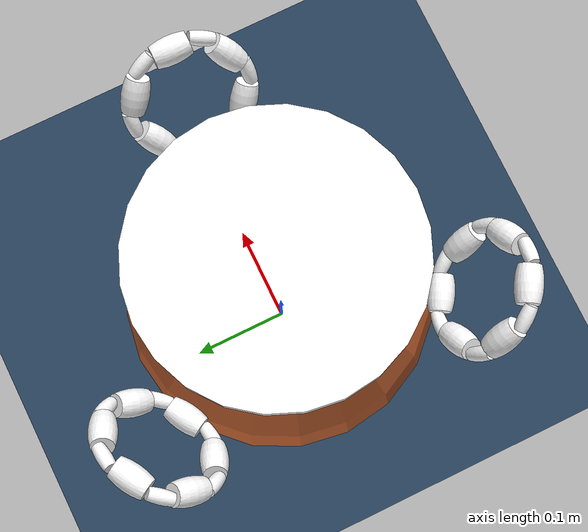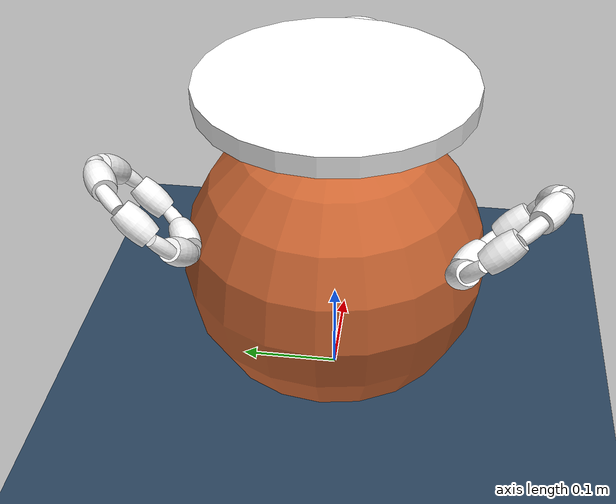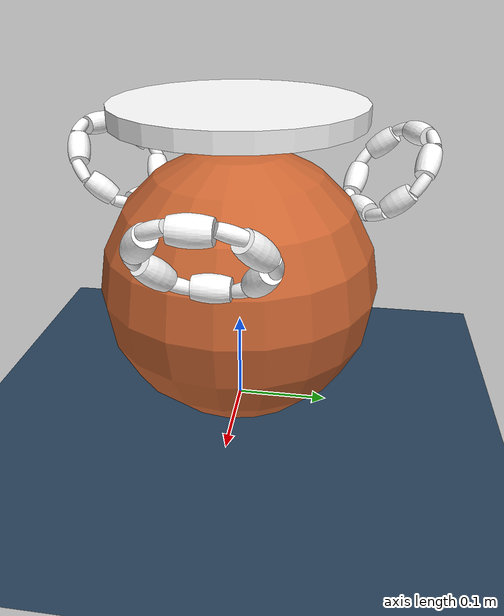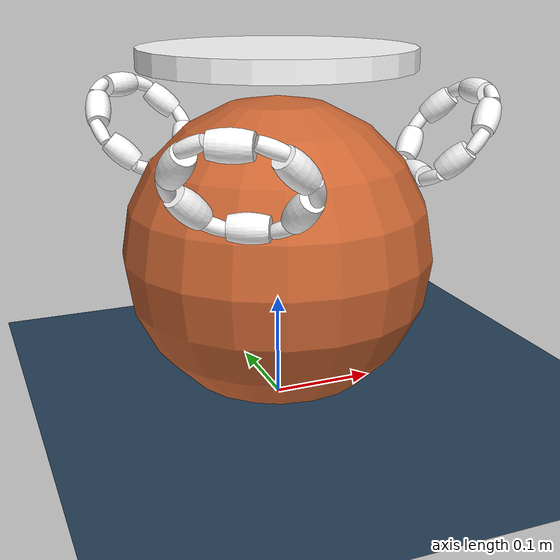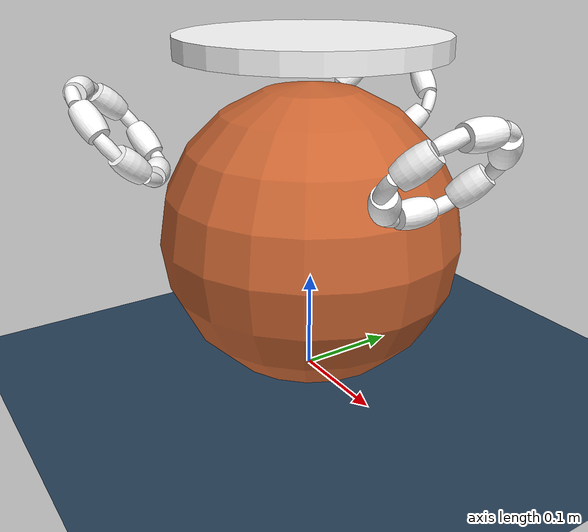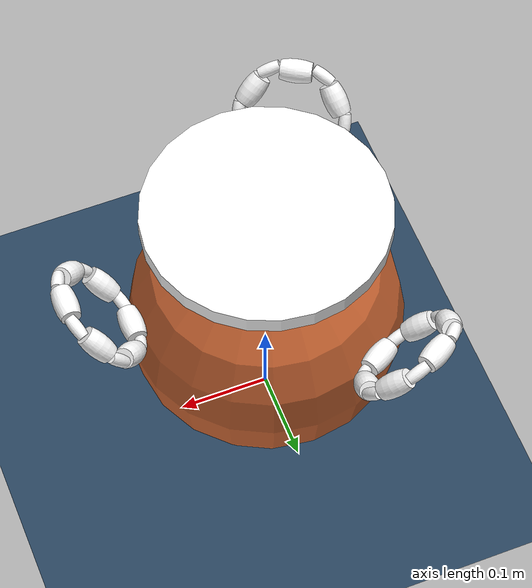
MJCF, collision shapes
<mujoco model="mjmodel scene">

  <!--引用机器人模型-->
  <include file="omni_ballbot.xml"/>
  <!--设置场景统计信息显示范围 中心位于(0,0,0.1)，半径 0.8 米-->
  <statistic center="0 0 0.1" extent="0.8"/>

  <!--视觉全局设置-->
  <visual>
    <headlight diffuse="0.6 0.6 0.6" ambient="0.3 0.3 0.3" specular="0 0 0"/>
    <rgba haze="0.15 0.25 0.35 1"/>
    <global azimuth="-130" elevation="-20"/>
  </visual>
  <!--天空盒纹理 地面纹理-->
  <asset>
    <texture type="skybox" builtin="gradient" rgb1="0.3 0.5 0.7" rgb2="0 0 0" width="512" height="3072"/>
    <texture type="2d" name="groundplane" builtin="checker" mark="edge" rgb1="0.2 0.3 0.4" rgb2="0.1 0.2 0.3"
      markrgb="0.8 0.8 0.8" width="300" height="300"/>
    <material name="groundplane" texture="groundplane" texuniform="true" texrepeat="5 5" reflectance="0.2"/>
    <mesh name="roll_arrow_ring" file="roll_arrow_ring.stl"/>
  </asset>
  <!--地面平面和球-->
  <worldbody>
    <light pos="0 0 1.5" dir="0 0 -1" directional="true"/>
    <!--地面摩擦力在这-->
    <geom name="floor" size="0 0 0.05" type="plane" material="groundplane" friction="1.0 0.003 0.0005"/>
    <body name="balance_ball" pos="0 0 0.15">
      <freejoint name="ball_joint"/>
      <geom name="ball_geom" type="sphere" size="0.15" mass="0.6" rgba="0.8 0.4 0.2 1"
            condim="6" friction="1.0 0.003 0.0005"
            solref="0.02 1" solimp="0.9 0.95 0.001 0.5 2" margin="0.002"/>
      <!-- 球滚动方向可视化：两个正交圆环，随球旋转 -->
      <geom type="mesh" mesh="roll_arrow_ring" rgba="0 1 0 0.85" contype="0" conaffinity="0"/>
      <geom type="mesh" mesh="roll_arrow_ring" rgba="1 0 0 0.85" contype="0" conaffinity="0" quat="0.707 0 0 0.707"/>
    </body>
  </worldbody>
</mujoco>

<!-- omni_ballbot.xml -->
<mujoco model="omni_ballbot">
  <compiler angle="radian" meshdir="../meshes/"/>
  <!--cone决定了打滑时摩擦力的极限边界为椭圆形  impratio为接触阻抗比-->
  <option cone="elliptic" impratio="10"/>
<!--资产meshes-->
  <asset>
    <mesh name="base_link" file="base_link.STL"/>
    <mesh name="wheel_base" file="wheel_base.STL"/>
    <mesh name="wheel_link_A" file="wheel_link_A.STL"/>
    <mesh name="wheel_link_B" file="wheel_link_B.STL"/>
  </asset>
<!--执行器actuator-->
  <actuator>
    <motor name="wheel1" joint="wheel1_joint" ctrlrange="-2.5 2.5" gear="1"/>
    <motor name="wheel2" joint="wheel2_joint" ctrlrange="-2.5 2.5" gear="1"/>
    <motor name="wheel3" joint="wheel3_joint" ctrlrange="-2.5 2.5" gear="1"/>
  </actuator>
<!--辊子组别-->
  <!-- 物体A 和 物体B 发生碰撞的条件是：(注：& 是二进制按位与运算)
      A_contype & B_conaffinity > 0 就碰撞 或者 B_contype & A_conaffinity > 0
  -->
  <!-- 默认地面是 contype="1", conaffinity="1" -->
  <default>
    <default class="omni_roller">
      <!--type="mesh": 告诉引擎别用简单的球或圆柱，去读取你的 STL 文件算凸包，还原最真实的鼓形外轮廓-->
      <!--接触维度:3维算垂直弹力 + 沿面滑动的摩擦力；-->
      <!-- 5 (滑动摩擦): 拉到最大，确保辊子与球之间完全不滑，轮子转动直接驱动球/机身。
           5 (扭转摩擦): 拉满，防止辊子在球面上原地自转打滑以及球在地面扭转。
           0.001 (滚动摩擦): 轻微滚动阻力。 -->
      <!-- margin="0.001" (碰撞裕度): * 网格模型表面会有微小的“棱角”。这个参数会在你的 3D 模型外面“包”一层 1 毫米厚的隐形软垫。
        它能让引擎提前介入计算，把网格相撞时的尖锐脉冲力“柔化”，控制器读取到的力矩曲线会非常平滑。 -->
      <geom type="mesh" contype="2" conaffinity="1" condim="3" friction="0.3 0.001 0.0005" margin="0.002" solref="0.02 1" solimp="0.9 0.95 0.001 0.5 2"/>

      <!-- type="hinge": 所有的辊子只能绕自己的那根轴转。ß
           damping="0.001" (粘性阻尼): * 含义： 阻力与转速成正比（转得越快阻力越大）。模拟轴承里润滑油的粘滞力
           frictionloss="0.001" (干摩擦/静摩擦损失):启动阻力。你必须施加大于这个值的扭矩，辊子才会开始转。模拟金属部件之间的静摩擦。 -->
      <joint type="hinge" damping="0.001" frictionloss="0.001" armature="0.0001"/>
    </default>

    <default class="visual_geom">
      <geom type="mesh" contype="0" conaffinity="0" group="1" density="0"/>
    </default>
  </default>

  <!-- ===== 传感器 ===== -->
  <sensor>
    <!-- 姿态四元数 (IMU) -->
    <framequat name="base_orientation" objtype="site" objname="imu_site"/>
    <!-- 角速度 (陀螺仪) -->
    <frameangvel name="base_angvel" objtype="site" objname="imu_site"/>
    <!-- 线加速度 (加速度计) -->
    <accelerometer name="base_acc" site="imu_site"/>
    <!-- 线速度 -->
    <framelinvel name="base_linvel" objtype="site" objname="imu_site"/>
  </sensor>
  <worldbody>
    <!--让机器人活动-->
    <body name="base_link" pos="0 0 0.335">
    <freejoint name="base_joint"/>
    <inertial pos="0 0 0" mass="3.0" diaginertia="0.05 0.05 0.08"/>
    <geom type="mesh" contype="0" conaffinity="0" group="1" density="0" rgba="1 1 1 1" mesh="base_link"/>
    <geom type="cylinder" size="0.13 0.01" rgba="1 1 1 0" solref="0.04 1" solimp="0.9 0.95 0.001 0.5 2"/>
    <!-- IMU 传感器安装点 (base_link 质心) -->
    <site name="imu_site" pos="0 0 0"/>
    <!--轮子1-->
    <body name="wheel1_base" pos="0.18364 0 -0.081395" quat="0.939693 0 0.342019 0">
      <inertial pos="0 0 0" mass="1.0" diaginertia="1.0185e-05 5.1179e-06 5.1179e-06"/>
      <joint name="wheel1_joint" pos="0 0 0" axis="1 0 0"/>
        <geom type="mesh" mesh="wheel_base" rgba="1 1 1 1" class="visual_geom"/>
      <!--辊子-->
      <body name="wheel1_link_A1" pos="0 0 0.052" quat="0.707105 0 -0.707108 0">
        <inertial pos="0 0 0" quat="0.707107 0.707107 0 0" mass="0.04" diaginertia="2.0983e-06 2.0983e-06 1.2396e-06"/>
        <joint name="wheel1_joint_A1" pos="0 0 0" axis="0 1 0" class="omni_roller"/>
        <geom mesh="wheel_link_A" rgba="1 1 1 1" class="visual_geom"/>
        <geom mesh="wheel_link_A" class="omni_roller" rgba="1 1 1 0"/>
      </body>
      <!--辊子-->
      <body name="wheel1_link_A2" pos="0 -0.045033 0.026" quat="0.612371 0.353553 -0.612374 -0.353553">
        <inertial pos="0 0 0" quat="0.707107 0.707107 0 0" mass="0.04" diaginertia="2.09835e-06 2.09835e-06 1.23958e-06"/>
        <joint name="wheel1_joint_A2" pos="0 0 0" axis="0 1 0" class="omni_roller"/>
        <geom mesh="wheel_link_A" rgba="1 1 1 1" class="visual_geom"/>
        <geom mesh="wheel_link_A" class="omni_roller" rgba="1 1 1 0"/>
      </body>
      <!--辊子-->
      <body name="wheel1_link_A3" pos="0 -0.045033 -0.026" quat="0.353551 0.612373 -0.353555 -0.612373">
        <inertial pos="0 0 0" quat="0.707107 0.707107 0 0" mass="0.04" diaginertia="2.0983e-06 2.0983e-06 1.2396e-06"/>
        <joint name="wheel1_joint_A3" pos="0 0 0" axis="0 1 0" class="omni_roller"/>
        <geom mesh="wheel_link_A" rgba="1 1 1 1" class="visual_geom"/>
        <geom mesh="wheel_link_A" class="omni_roller" rgba="1 1 1 0"/>
      </body>
      <!--辊子-->
      <body name="wheel1_link_A4" pos="0 0 -0.052" quat="-2.59734e-06 0.707105 -2.59735e-06 -0.707108">
        <inertial pos="0 0 0" quat="0.707107 0.707107 0 0" mass="0.04" diaginertia="2.09835e-06 2.09835e-06 1.23958e-06"/>
        <joint name="wheel1_joint_A4" pos="0 0 0" axis="0 1 0" class="omni_roller"/>
        <geom mesh="wheel_link_A" rgba="1 1 1 1" class="visual_geom"/>
        <geom mesh="wheel_link_A" class="omni_roller" rgba="1 1 1 0"/>
      </body>
      <!--辊子-->
      <body name="wheel1_link_A5" pos="0 0.045033 -0.026" quat="0.353551 -0.612373 -0.353555 0.612373">
        <inertial pos="0 0 0" quat="0.707107 0.707107 0 0" mass="0.04" diaginertia="2.0983e-06 2.0983e-06 1.2396e-06"/>
        <joint name="wheel1_joint_A5" pos="0 0 0" axis="0 1 0" class="omni_roller"/>
        <geom mesh="wheel_link_A" rgba="1 1 1 1" class="visual_geom"/>
        <geom mesh="wheel_link_A" class="omni_roller" rgba="1 1 1 0"/>
      </body>
      <!--辊子-->
      <body name="wheel1_link_A6" pos="0 0.045033 0.026" quat="0.612371 -0.353553 -0.612374 0.353553">
        <inertial pos="0 0 0" quat="0.707107 0.707107 0 0" mass="0.04" diaginertia="2.0983e-06 2.0983e-06 1.2396e-06"/>
        <joint name="wheel1_joint_A6" pos="0 0 0" axis="0 1 0" class="omni_roller"/>
        <geom mesh="wheel_link_A" rgba="1 1 1 1" class="visual_geom"/>
        <geom mesh="wheel_link_A" class="omni_roller" rgba="1 1 1 0"/>
      </body>
      <!--辊子-->
      <body name="wheel1_link_B1" pos="0 -0.029 0.050229" quat="0.683012 0.183012 -0.683014 -0.183012">
        <inertial pos="0 -1.1743e-06 0" quat="0.707107 0.707107 0 0" mass="0.02" diaginertia="1.9241e-07 1.9241e-07 7.4977e-08"/>
        <joint name="wheel1_joint_B1" pos="0 0 0" axis="0 1 0" class="omni_roller"/>
        <geom mesh="wheel_link_B" rgba="1 1 1 1" class="visual_geom"/>
        <geom mesh="wheel_link_B" class="omni_roller" rgba="1 1 1 0"/>
      </body>
      <body name="wheel1_link_B2" pos="0 -0.058 0" quat="0.499998 0.5 -0.500002 -0.5">
        <inertial pos="0 -1.17428e-06 0" quat="0.707107 0.707107 0 0" mass="0.02" diaginertia="1.92408e-07 1.92408e-07 7.49769e-08"/>
        <joint name="wheel1_joint_B2" pos="0 0 0" axis="0 1 0" class="omni_roller"/>
        <geom mesh="wheel_link_B" rgba="1 1 1 1" class="visual_geom"/>
        <geom mesh="wheel_link_B" class="omni_roller" rgba="1 1 1 0"/>
      </body>
      <body name="wheel1_link_B3" pos="0 -0.029 -0.0502295" quat="0.183013 0.683013 -0.183013 -0.683013">
        <inertial pos="0 -1.1743e-06 0" quat="0.707107 0.707107 0 0" mass="0.02" diaginertia="1.9241e-07 1.9241e-07 7.4977e-08"/>
        <joint name="wheel1_joint_B3" pos="0 0 0" axis="0 1 0" class="omni_roller"/>
        <geom mesh="wheel_link_B" rgba="1 1 1 1" class="visual_geom"/>
        <geom mesh="wheel_link_B" class="omni_roller" rgba="1 1 1 0"/>
      </body>
      <body name="wheel1_link_B4" pos="0 0.029 -0.050229" quat="0.183009 -0.683013 -0.183014 0.683013">
        <inertial pos="0 -1.17428e-06 0" quat="0.707107 0.707107 0 0" mass="0.02" diaginertia="1.92408e-07 1.92408e-07 7.49769e-08"/>
        <joint name="wheel1_joint_B4" pos="0 0 0" axis="0 1 0" class="omni_roller"/>
        <geom mesh="wheel_link_B" rgba="1 1 1 1" class="visual_geom"/>
        <geom mesh="wheel_link_B" class="omni_roller" rgba="1 1 1 0"/>
      </body>
      <body name="wheel1_link_B5" pos="0 0.058 0" quat="0.499998 -0.5 -0.500002 0.5">
        <inertial pos="0 -1.17428e-06 0" quat="0.707107 0.707107 0 0" mass="0.02" diaginertia="1.92408e-07 1.92408e-07 7.49769e-08"/>
        <joint name="wheel1_joint_B5" pos="0 0 0" axis="0 1 0" class="omni_roller"/>
        <geom mesh="wheel_link_B" rgba="1 1 1 1" class="visual_geom"/>
        <geom mesh="wheel_link_B" class="omni_roller" rgba="1 1 1 0"/>
      </body>
      <body name="wheel1_link_B6" pos="0 0.029 0.050229" quat="0.683012 -0.183012 -0.683014 0.183012">
        <inertial pos="0 -1.1743e-06 0" quat="0.707107 0.707107 0 0" mass="0.02" diaginertia="1.9241e-07 1.9241e-07 7.4977e-08"/>
        <joint name="wheel1_joint_B6" pos="0 0 0" axis="0 1 0" class="omni_roller"/>
        <geom mesh="wheel_link_B" rgba="1 1 1 1" class="visual_geom"/>
        <geom mesh="wheel_link_B" class="omni_roller" rgba="1 1 1 0"/>
      </body>
    </body>

    <body name="wheel2_base" pos="-0.091819 0.15904 -0.081395" quat="0.469844 -0.296198 0.171009 0.813799">
      <inertial pos="0 0 0" mass="1.0" diaginertia="1.0185e-05 5.1179e-06 5.1179e-06"/>
      <joint name="wheel2_joint" pos="0 0 0" axis="1 0 0"/>
      <geom type="mesh" mesh="wheel_base" rgba="1 1 1 1" class="visual_geom"/>
      <body name="wheel2_link_A1" pos="0 0 0.052" quat="0.707105 0 -0.707108 0">
        <inertial pos="0 0 0" quat="0.707107 0.707107 0 0" mass="0.04" diaginertia="2.0983e-06 2.0983e-06 1.2396e-06"/>
        <joint name="wheel2_joint_A1" pos="0 0 0" axis="0 1 0" class="omni_roller"/>
        <geom mesh="wheel_link_A" rgba="1 1 1 1" class="visual_geom"/>
        <geom mesh="wheel_link_A" class="omni_roller" rgba="1 1 1 0"/>
      </body>
      <body name="wheel2_link_A2" pos="0 -0.045033 0.026" quat="0.612371 0.353553 -0.612374 -0.353553">
        <inertial pos="0 0 0" quat="0.707107 0.707107 0 0" mass="0.04" diaginertia="2.09835e-06 2.09835e-06 1.23958e-06"/>
        <joint name="wheel2_joint_A2" pos="0 0 0" axis="0 1 0" class="omni_roller"/>
        <geom mesh="wheel_link_A" rgba="1 1 1 1" class="visual_geom"/>
        <geom mesh="wheel_link_A" class="omni_roller" rgba="1 1 1 0"/>
      </body>
      <body name="wheel2_link_A3" pos="0 -0.045033 -0.026" quat="0.353551 0.612373 -0.353555 -0.612373">
        <inertial pos="0 0 0" quat="0.707107 0.707107 0 0" mass="0.04" diaginertia="2.0983e-06 2.0983e-06 1.2396e-06"/>
        <joint name="wheel2_joint_A3" pos="0 0 0" axis="0 1 0" class="omni_roller"/>
        <geom mesh="wheel_link_A" rgba="1 1 1 1" class="visual_geom"/>
        <geom mesh="wheel_link_A" class="omni_roller" rgba="1 1 1 0"/>
      </body>
      <body name="wheel2_link_A4" pos="0 0 -0.052" quat="-2.59734e-06 0.707105 -2.59735e-06 -0.707108">
        <inertial pos="0 0 0" quat="0.707107 0.707107 0 0" mass="0.04" diaginertia="2.09835e-06 2.09835e-06 1.23958e-06"/>
        <joint name="wheel2_joint_A4" pos="0 0 0" axis="0 1 0" class="omni_roller"/>
        <geom mesh="wheel_link_A" rgba="1 1 1 1" class="visual_geom"/>
        <geom mesh="wheel_link_A" class="omni_roller" rgba="1 1 1 0"/>
      </body>
      <body name="wheel2_link_A5" pos="0 0.045033 -0.026" quat="0.353551 -0.612373 -0.353555 0.612373">
        <inertial pos="0 0 0" quat="0.707107 0.707107 0 0" mass="0.04" diaginertia="2.0983e-06 2.0983e-06 1.2396e-06"/>
        <joint name="wheel2_joint_A5" pos="0 0 0" axis="0 1 0" class="omni_roller"/>
        <geom mesh="wheel_link_A" rgba="1 1 1 1" class="visual_geom"/>
        <geom mesh="wheel_link_A" class="omni_roller" rgba="1 1 1 0"/>
      </body>
      <body name="wheel2_link_A6" pos="0 0.045033 0.026" quat="0.612371 -0.353553 -0.612374 0.353553">
        <inertial pos="0 0 0" quat="0.707107 0.707107 0 0" mass="0.04" diaginertia="2.0983e-06 2.0983e-06 1.2396e-06"/>
        <joint name="wheel2_joint_A6" pos="0 0 0" axis="0 1 0" class="omni_roller"/>
        <geom mesh="wheel_link_A" rgba="1 1 1 1" class="visual_geom"/>
        <geom mesh="wheel_link_A" class="omni_roller" rgba="1 1 1 0"/>
      </body>
      <body name="wheel2_link_B1" pos="0 -0.029 0.050229" quat="0.683012 0.183012 -0.683014 -0.183012">
        <inertial pos="0 -1.1743e-06 0" quat="0.707107 0.707107 0 0" mass="0.02" diaginertia="1.9241e-07 1.9241e-07 7.4977e-08"/>
        <joint name="wheel2_joint_B1" pos="0 0 0" axis="0 1 0" class="omni_roller"/>
        <geom mesh="wheel_link_B" rgba="1 1 1 1" class="visual_geom"/>
        <geom mesh="wheel_link_B" class="omni_roller" rgba="1 1 1 0"/>
      </body>
      <body name="wheel2_link_B2" pos="0 -0.058 0" quat="0.499998 0.5 -0.500002 -0.5">
        <inertial pos="0 -1.17428e-06 0" quat="0.707107 0.707107 0 0" mass="0.02" diaginertia="1.92408e-07 1.92408e-07 7.49769e-08"/>
        <joint name="wheel2_joint_B2" pos="0 0 0" axis="0 1 0" class="omni_roller"/>
        <geom mesh="wheel_link_B" rgba="1 1 1 1" class="visual_geom"/>
        <geom mesh="wheel_link_B" class="omni_roller" rgba="1 1 1 0"/>
      </body>
      <body name="wheel2_link_B3" pos="0 -0.029 -0.0502295" quat="0.183013 0.683013 -0.183013 -0.683013">
        <inertial pos="0 -1.1743e-06 0" quat="0.707107 0.707107 0 0" mass="0.02" diaginertia="1.9241e-07 1.9241e-07 7.4977e-08"/>
        <joint name="wheel2_joint_B3" pos="0 0 0" axis="0 1 0" class="omni_roller"/>
        <geom mesh="wheel_link_B" rgba="1 1 1 1" class="visual_geom"/>
        <geom mesh="wheel_link_B" class="omni_roller" rgba="1 1 1 0"/>
      </body>
      <body name="wheel2_link_B4" pos="0 0.029 -0.050229" quat="0.183009 -0.683013 -0.183014 0.683013">
        <inertial pos="0 -1.17428e-06 0" quat="0.707107 0.707107 0 0" mass="0.02" diaginertia="1.92408e-07 1.92408e-07 7.49769e-08"/>
        <joint name="wheel2_joint_B4" pos="0 0 0" axis="0 1 0" class="omni_roller"/>
        <geom mesh="wheel_link_B" rgba="1 1 1 1" class="visual_geom"/>
        <geom mesh="wheel_link_B" class="omni_roller" rgba="1 1 1 0"/>
      </body>
      <body name="wheel2_link_B5" pos="0 0.058 0" quat="0.499998 -0.5 -0.500002 0.5">
        <inertial pos="0 -1.17428e-06 0" quat="0.707107 0.707107 0 0" mass="0.02" diaginertia="1.92408e-07 1.92408e-07 7.49769e-08"/>
        <joint name="wheel2_joint_B5" pos="0 0 0" axis="0 1 0" class="omni_roller"/>
        <geom mesh="wheel_link_B" rgba="1 1 1 1" class="visual_geom"/>
        <geom mesh="wheel_link_B" class="omni_roller" rgba="1 1 1 0"/>
      </body>
      <body name="wheel2_link_B6" pos="0 0.029 0.050229" quat="0.683012 -0.183012 -0.683014 0.183012">
        <inertial pos="0 -1.1743e-06 0" quat="0.707107 0.707107 0 0" mass="0.02" diaginertia="1.9241e-07 1.9241e-07 7.4977e-08"/>
        <joint name="wheel2_joint_B6" pos="0 0 0" axis="0 1 0" class="omni_roller"/>
        <geom mesh="wheel_link_B" rgba="1 1 1 1" class="visual_geom"/>
        <geom mesh="wheel_link_B" class="omni_roller" rgba="1 1 1 0"/>
      </body>
    </body>

    <body name="wheel3_base" pos="-0.091819 -0.15904 -0.081395" quat="0.469844 0.296198 0.171009 -0.813799">
      <inertial pos="0 0 0" mass="1.0" diaginertia="1.0185e-05 5.1179e-06 5.1179e-06"/>
      <joint name="wheel3_joint" pos="0 0 0" axis="1 0 0"/>
      <geom type="mesh" mesh="wheel_base" rgba="1 1 1 1" class="visual_geom"/>
      <body name="wheel3_link_A1" pos="0 0 0.052" quat="0.707105 0 -0.707108 0">
        <inertial pos="0 0 0" quat="0.707107 0.707107 0 0" mass="0.04" diaginertia="2.0983e-06 2.0983e-06 1.2396e-06"/>
        <joint name="wheel3_joint_A1" pos="0 0 0" axis="0 1 0" class="omni_roller"/>
        <geom mesh="wheel_link_A" rgba="1 1 1 1" class="visual_geom"/>
        <geom mesh="wheel_link_A" class="omni_roller" rgba="1 1 1 0"/>
      </body>
      <body name="wheel3_link_A2" pos="0 -0.045033 0.026" quat="0.612371 0.353553 -0.612374 -0.353553">
        <inertial pos="0 0 0" quat="0.707107 0.707107 0 0" mass="0.04" diaginertia="2.09835e-06 2.09835e-06 1.23958e-06"/>
        <joint name="wheel3_joint_A2" pos="0 0 0" axis="0 1 0" class="omni_roller"/>
        <geom mesh="wheel_link_A" rgba="1 1 1 1" class="visual_geom"/>
        <geom mesh="wheel_link_A" class="omni_roller" rgba="1 1 1 0"/>
      </body>
      <body name="wheel3_link_A3" pos="0 -0.045033 -0.026" quat="0.353551 0.612373 -0.353555 -0.612373">
        <inertial pos="0 0 0" quat="0.707107 0.707107 0 0" mass="0.04" diaginertia="2.0983e-06 2.0983e-06 1.2396e-06"/>
        <joint name="wheel3_joint_A3" pos="0 0 0" axis="0 1 0" class="omni_roller"/>
        <geom mesh="wheel_link_A" rgba="1 1 1 1" class="visual_geom"/>
        <geom mesh="wheel_link_A" class="omni_roller" rgba="1 1 1 0"/>
      </body>
      <body name="wheel3_link_A4" pos="0 0 -0.052" quat="-2.59734e-06 0.707105 -2.59735e-06 -0.707108">
        <inertial pos="0 0 0" quat="0.707107 0.707107 0 0" mass="0.04" diaginertia="2.09835e-06 2.09835e-06 1.23958e-06"/>
        <joint name="wheel3_joint_A4" pos="0 0 0" axis="0 1 0" class="omni_roller"/>
        <geom mesh="wheel_link_A" rgba="1 1 1 1" class="visual_geom"/>
        <geom mesh="wheel_link_A" class="omni_roller" rgba="1 1 1 0"/>
      </body>
      <body name="wheel3_link_A5" pos="0 0.045033 -0.026" quat="0.353551 -0.612373 -0.353555 0.612373">
        <inertial pos="0 0 0" quat="0.707107 0.707107 0 0" mass="0.04" diaginertia="2.0983e-06 2.0983e-06 1.2396e-06"/>
        <joint name="wheel3_joint_A5" pos="0 0 0" axis="0 1 0" class="omni_roller"/>
        <geom mesh="wheel_link_A" rgba="1 1 1 1" class="visual_geom"/>
        <geom mesh="wheel_link_A" class="omni_roller" rgba="1 1 1 0"/>
      </body>
      <body name="wheel3_link_A6" pos="0 0.045033 0.026" quat="0.612371 -0.353553 -0.612374 0.353553">
        <inertial pos="0 0 0" quat="0.707107 0.707107 0 0" mass="0.04" diaginertia="2.0983e-06 2.0983e-06 1.2396e-06"/>
        <joint name="wheel3_joint_A6" pos="0 0 0" axis="0 1 0" class="omni_roller"/>
        <geom mesh="wheel_link_A" rgba="1 1 1 1" class="visual_geom"/>
        <geom mesh="wheel_link_A" class="omni_roller" rgba="1 1 1 0"/>
      </body>
      <body name="wheel3_link_B1" pos="0 -0.029 0.050229" quat="0.683012 0.183012 -0.683014 -0.183012">
        <inertial pos="0 -1.1743e-06 0" quat="0.707107 0.707107 0 0" mass="0.02" diaginertia="1.9241e-07 1.9241e-07 7.4977e-08"/>
        <joint name="wheel3_joint_B1" pos="0 0 0" axis="0 1 0" class="omni_roller"/>
        <geom mesh="wheel_link_B" rgba="1 1 1 1" class="visual_geom"/>
        <geom mesh="wheel_link_B" class="omni_roller" rgba="1 1 1 0"/>
      </body>
      <body name="wheel3_link_B2" pos="0 -0.058 0" quat="0.499998 0.5 -0.500002 -0.5">
        <inertial pos="0 -1.17428e-06 0" quat="0.707107 0.707107 0 0" mass="0.02" diaginertia="1.92408e-07 1.92408e-07 7.49769e-08"/>
        <joint name="wheel3_joint_B2" pos="0 0 0" axis="0 1 0" class="omni_roller"/>
        <geom mesh="wheel_link_B" rgba="1 1 1 1" class="visual_geom"/>
        <geom mesh="wheel_link_B" class="omni_roller" rgba="1 1 1 0"/>
      </body>
      <body name="wheel3_link_B3" pos="0 -0.029 -0.0502295" quat="0.183013 0.683013 -0.183013 -0.683013">
        <inertial pos="0 -1.1743e-06 0" quat="0.707107 0.707107 0 0" mass="0.02" diaginertia="1.9241e-07 1.9241e-07 7.4977e-08"/>
        <joint name="wheel3_joint_B3" pos="0 0 0" axis="0 1 0" class="omni_roller"/>
        <geom mesh="wheel_link_B" rgba="1 1 1 1" class="visual_geom"/>
        <geom mesh="wheel_link_B" class="omni_roller" rgba="1 1 1 0"/>
      </body>
      <body name="wheel3_link_B4" pos="0 0.029 -0.050229" quat="0.183009 -0.683013 -0.183014 0.683013">
        <inertial pos="0 -1.17428e-06 0" quat="0.707107 0.707107 0 0" mass="0.02" diaginertia="1.92408e-07 1.92408e-07 7.49769e-08"/>
        <joint name="wheel3_joint_B4" pos="0 0 0" axis="0 1 0" class="omni_roller"/>
        <geom mesh="wheel_link_B" rgba="1 1 1 1" class="visual_geom"/>
        <geom mesh="wheel_link_B" class="omni_roller" rgba="1 1 1 0"/>
      </body>
      <body name="wheel3_link_B5" pos="0 0.058 0" quat="0.499998 -0.5 -0.500002 0.5">
        <inertial pos="0 -1.17428e-06 0" quat="0.707107 0.707107 0 0" mass="0.02" diaginertia="1.92408e-07 1.92408e-07 7.49769e-08"/>
        <joint name="wheel3_joint_B5" pos="0 0 0" axis="0 1 0" class="omni_roller"/>
        <geom mesh="wheel_link_B" rgba="1 1 1 1" class="visual_geom"/>
        <geom mesh="wheel_link_B" class="omni_roller" rgba="1 1 1 0"/>
      </body>
      <body name="wheel3_link_B6" pos="0 0.029 0.050229" quat="0.683012 -0.183012 -0.683014 0.183012">
        <inertial pos="0 -1.1743e-06 0" quat="0.707107 0.707107 0 0" mass="0.02" diaginertia="1.9241e-07 1.9241e-07 7.4977e-08"/>
        <joint name="wheel3_joint_B6" pos="0 0 0" axis="0 1 0" class="omni_roller"/>
        <geom mesh="wheel_link_B" rgba="1 1 1 1" class="visual_geom"/>
        <geom mesh="wheel_link_B" class="omni_roller" rgba="1 1 1 0"/>
      </body>
    </body>

    </body>
  </worldbody>
</mujoco>
